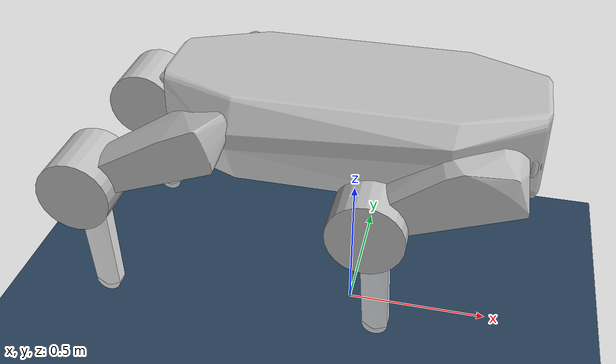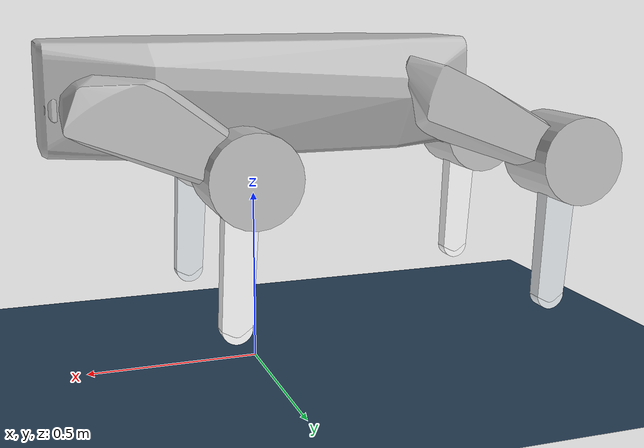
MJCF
<?xml version='1.0' encoding='utf-8'?>
<mujoco model="openrobot_urdf_new_wheelfixed">
  <compiler angle="radian" meshdir="../collision" />
  <asset>
    <mesh name="base_link_collision" content_type="model/stl" file="base_link_collision.STL" />
    <mesh name="FR_hip_collision" content_type="model/stl" file="FR_hip_collision.STL" />
    <mesh name="FR_thigh_collision" content_type="model/stl" file="FR_thigh_collision.STL" />
    <mesh name="FR_calf_collision" content_type="model/stl" file="FR_calf_collision.STL" />
    <mesh name="FR_foot_collision" content_type="model/stl" file="FR_foot_collision.STL" />
    <mesh name="FL_hip_collision" content_type="model/stl" file="FL_hip_collision.STL" />
    <mesh name="FL_thigh_collision" content_type="model/stl" file="FL_thigh_collision.STL" />
    <mesh name="FL_calf_collision" content_type="model/stl" file="FL_calf_collision.STL" />
    <mesh name="FL_foot_collision" content_type="model/stl" file="FL_foot_collision.STL" />
    <mesh name="RR_hip_collision" content_type="model/stl" file="RR_hip_collision.STL" />
    <mesh name="RR_thigh_collision" content_type="model/stl" file="RR_thigh_collision.STL" />
    <mesh name="RR_calf_collision" content_type="model/stl" file="RR_calf_collision.STL" />
    <mesh name="RR_foot_collision" content_type="model/stl" file="RR_foot_collision.STL" />
    <mesh name="RL_hip_collision" content_type="model/stl" file="RL_hip_collision.STL" />
    <mesh name="RL_thigh_collision" content_type="model/stl" file="RL_thigh_collision.STL" />
    <mesh name="RL_calf_collision" content_type="model/stl" file="RL_calf_collision.STL" />
    <mesh name="RL_foot_collision" content_type="model/stl" file="RL_foot_collision.STL" />
    <texture name="skybox" type="skybox" builtin="gradient" rgb1="0.3 0.5 0.7" rgb2="0 0 0" width="512" height="3072" />
    <texture name="ground" type="2d" builtin="checker" rgb1="0.2 0.3 0.4" rgb2="0.1 0.2 0.3" width="300" height="300" />
    <material name="ground" texture="ground" texuniform="true" texrepeat="5 5" reflectance="0.1" />
  </asset>
  <worldbody>
    <light pos="0 0 4" dir="0 0 -1" directional="true" />
    <geom name="floor" type="plane" size="0 0 0.1" material="ground" friction="1 0.005 0.0001" />
    <body name="base_link" pos="0 0 0.69">
      <freejoint name="root" />
      <inertial pos="-0.0095784 0.0000043325 0.10347" mass="55.995" fullinertia="0.51509 0.90609 1.1068 0.000000012331 -0.0000021274 0.00000016669" />
      <geom type="mesh" rgba="0.75294 0.75294 0.75294 1" mesh="base_link_collision" />
      <body name="FR_hip" pos="0.3225 -0.125 0.089">
        <inertial pos="0.075969 0.0046195 -0.00016581" quat="0.485868 0.491279 0.507256 0.515042" mass="1.5588" diaginertia="0.00636901 0.00565909 0.0043119" />
        <joint name="FR_hip_joint" pos="0 0 0" axis="-1 0 0" range="-0.2 0.2" armature="0.133886" />
        <geom type="mesh" rgba="0.75294 0.75294 0.75294 1" mesh="FR_hip_collision" />
        <body name="FR_thigh" pos="0.138 -0.0175 0">
          <inertial pos="-0.200549 -0.171236 -0.0882322" quat="0.562891 0.30933 0.431488 0.633472" mass="9.4551" diaginertia="0.307954 0.290005 0.0336267" />
          <joint name="FR_thigh_joint" pos="0 0 0" axis="0 1 0" range="-1.5 0" armature="0.133886" />
          <geom type="mesh" rgba="0.75294 0.75294 0.75294 1" mesh="FR_thigh_collision" />
          <geom size="0.124967 0.11445" pos="-0.362558 -0.1523 -0.16905" quat="0.707107 0.707107 0 0" type="cylinder" rgba="0.75294 0.75294 0.75294 1" />
          <body name="FR_calf" pos="-0.36252 -0.13375 -0.16905">
            <inertial pos="0.0267908 -0.0347748 -0.206993" quat="0.712575 -0.025959 -0.0250767 0.700667" mass="2.55884" diaginertia="0.0659026 0.0654479 0.00137375" />
            <joint name="FR_calf_joint" pos="0 0 0" axis="0 1 0" range="-1.6 0.6" armature="0.695525" />
            <geom type="mesh" rgba="0.89804 0.91765 0.92941 1" mesh="FR_calf_collision" />
            <geom pos="0.038934 -0.057 -0.40434" quat="1 0 0 0" type="mesh" rgba="0.89804 0.91765 0.92941 1" mesh="FR_foot_collision" />
          </body>
        </body>
      </body>
      <body name="FL_hip" pos="0.3225 0.125 0.089">
        <inertial pos="0.075969 -0.0046195 -0.00016581" quat="0.515043 0.507256 0.491279 0.485868" mass="1.5588" diaginertia="0.00636901 0.00565909 0.0043119" />
        <joint name="FL_hip_joint" pos="0 0 0" axis="-1 0 0" range="-0.2 0.2" armature="0.133886" />
        <geom type="mesh" rgba="0.75294 0.75294 0.75294 1" mesh="FL_hip_collision" />
        <body name="FL_thigh" pos="0.15899 0.007423 -0.0047941">
          <inertial pos="-0.221715 0.181238 -0.0835251" quat="0.633376 0.431292 0.309576 0.563014" mass="9.4653" diaginertia="0.308263 0.290284 0.033593" />
          <joint name="FL_thigh_joint" pos="0 0 0" axis="0 -1 0" range="0 1.5" armature="0.133886" />
          <geom type="mesh" rgba="0.75294 0.75294 0.75294 1" mesh="FL_thigh_collision" />
          <geom size="0.12499 0.1142" pos="-0.383568 0.162625 -0.164254" quat="0.707107 0.707107 0 0" type="cylinder" rgba="0.75294 0.75294 0.75294 1" />
          <body name="FL_calf" pos="-0.4151 0.15812 -0.14971">
            <inertial pos="0.0583818 0.0204798 -0.221534" quat="0.700667 -0.0250764 -0.0259586 0.712575" mass="2.55884" diaginertia="0.0659038 0.0654491 0.00137375" />
            <joint name="FL_calf_joint" pos="0 0 0" axis="0 -1 0" range="-0.6 1.6" armature="0.695525" />
            <geom type="mesh" rgba="1 1 1 1" mesh="FL_calf_collision" />
            <geom pos="0.070525 0.042705 -0.41889" quat="1 0 0 0" type="mesh" rgba="1 1 1 1" mesh="FL_foot_collision" />
          </body>
        </body>
      </body>
      <body name="RR_hip" pos="-0.3535 -0.125 0.089">
        <inertial pos="-0.067969 0.0046195 -0.00016581" quat="0.507256 0.515043 0.485868 0.491279" mass="1.5588" diaginertia="0.00636901 0.00565909 0.0043119" />
        <joint name="RR_hip_joint" pos="0 0 0" axis="1 0 0" range="-0.2 0.2" armature="0.133886" />
        <geom type="mesh" rgba="0.75294 0.75294 0.75294 1" mesh="RR_hip_collision" />
        <body name="RR_thigh" pos="-0.13 -0.0175 0">
          <inertial pos="-0.193936 -0.171297 -0.0871486" quat="0.559212 0.318066 0.428264 0.634591" mass="9.4841" diaginertia="0.332186 0.315143 0.0330943" />
          <joint name="RR_thigh_joint" pos="0 0 0" axis="0 1 0" range="-1.5 0" armature="0.133886" />
          <geom type="mesh" rgba="0.75294 0.75294 0.75294 1" mesh="RR_thigh_collision" />
          <geom size="0.124991 0.11445" pos="-0.362515 -0.1523 -0.169075" quat="0.707107 0.707107 0 0" type="cylinder" rgba="0.75294 0.75294 0.75294 1" />
          <body name="RR_calf" pos="-0.36252 -0.13375 -0.16905">
            <inertial pos="0.0267908 -0.0347748 -0.206993" quat="0.712575 -0.025959 -0.0250767 0.700667" mass="2.55884" diaginertia="0.0659026 0.0654479 0.00137375" />
            <joint name="RR_calf_joint" pos="0 0 0" axis="0 1 0" range="-1.6 0.6" armature="0.695525" />
            <geom type="mesh" rgba="1 1 1 1" mesh="RR_calf_collision" />
            <geom pos="0.038934 -0.057 -0.40434" quat="1 0 0 0" type="mesh" rgba="1 1 1 1" mesh="RR_foot_collision" />
          </body>
        </body>
      </body>
      <body name="RL_hip" pos="-0.3535 0.125 0.089">
        <inertial pos="-0.067969 -0.0046195 -0.00016581" quat="0.491279 0.485868 0.515043 0.507256" mass="1.5588" diaginertia="0.00636901 0.00565909 0.0043119" />
        <joint name="RL_hip_joint" pos="0 0 0" axis="1 0 0" range="-0.2 0.2" armature="0.133886" />
        <geom type="mesh" rgba="1 1 1 1" mesh="RL_hip_collision" />
        <body name="RL_thigh" pos="-0.13 0.0175 0">
          <inertial pos="-0.193936 0.171297 -0.0871487" quat="0.634591 0.428264 0.318066 0.559212" mass="9.4841" diaginertia="0.332185 0.315143 0.0330942" />
          <joint name="RL_thigh_joint" pos="0 0 0" axis="0 -1 0" range="0 1.5" armature="0.133886" />
          <geom type="mesh" rgba="0.75294 0.75294 0.75294 1" mesh="RL_thigh_collision" />
          <geom size="0.124991 0.11445" pos="-0.362515 0.1523 -0.169075" quat="0.707107 0.707107 0 0" type="cylinder" rgba="0.75294 0.75294 0.75294 1" />
          <body name="RL_calf" pos="-0.36252 0.13375 -0.16905">
            <inertial pos="0.0267908 0.0347748 -0.206993" quat="0.700667 -0.0250767 -0.025959 0.712575" mass="2.55884" diaginertia="0.0659026 0.0654479 0.00137375" />
            <joint name="RL_calf_joint" pos="0 0 0" axis="0 -1 0" range="-0.6 1.6" armature="0.695525" />
            <geom type="mesh" rgba="0.89804 0.91765 0.92941 1" mesh="RL_calf_collision" />
            <geom pos="0.038934 0.057 -0.40434" quat="1 0 0 0" type="mesh" rgba="0.89804 0.91765 0.92941 1" mesh="RL_foot_collision" />
          </body>
        </body>
      </body>
    </body>
  </worldbody>
  <option timestep="0.005" gravity="0 0 -9.81" integrator="implicitfast" cone="elliptic" />
  <size njmax="2000" nconmax="500" />
</mujoco>
